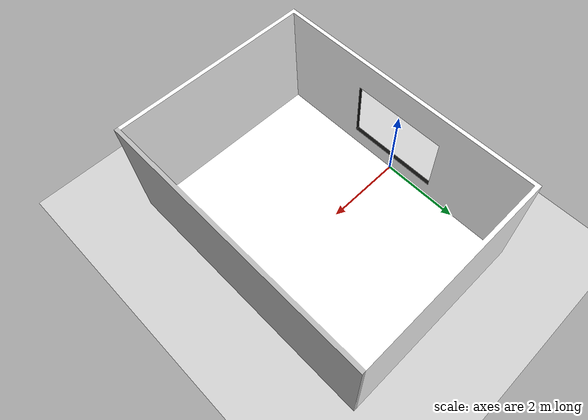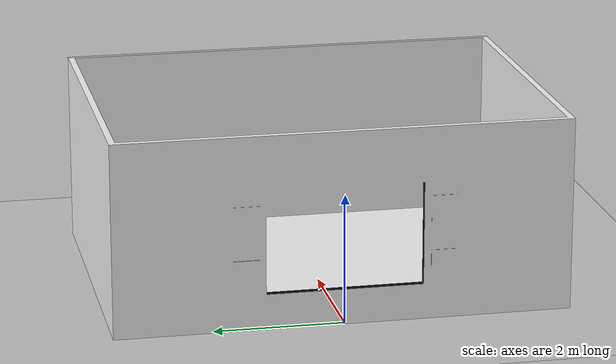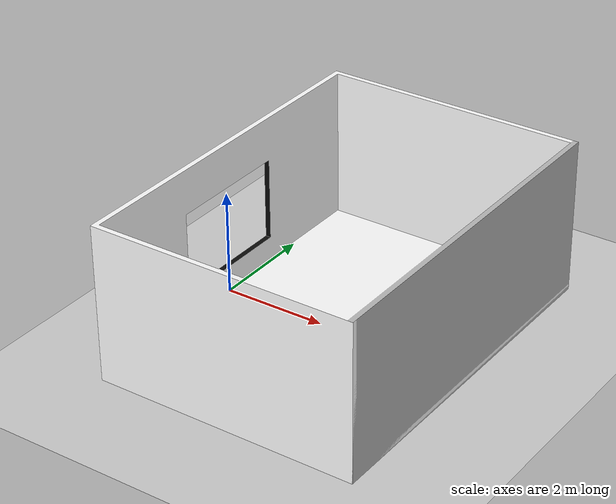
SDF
<?xml version="1.0" ?>
<sdf version="1.4">
  <world name="default">
    <gui>
      <camera name="user_camera">
        <pose>-12 .05 4 0 .35 -.05</pose>
      </camera>
    </gui>

    <include>
      <uri>model://mygroundplane</uri>
    </include>
    <include>
      <uri>model://sun</uri>
      <pose>-10 10 10 0 -1.047 0 </pose>
    </include>
    <include>
      <uri>model://window_wall</uri>
      <pose>0 0 0 0 0 3.14159265</pose>
      <scale>.5 .5 .5</scale>
    </include>

    <!-- Only one ROS interface plugin is required per world, as any other plugin can connect a Gazebo
         topic to a ROS topic (or vise versa). -->
    <plugin name="ros_interface_plugin" filename="librotors_gazebo_ros_interface_plugin.so"/>

    <spherical_coordinates>
      <surface_model>EARTH_WGS84</surface_model>
      <latitude_deg>47.3667</latitude_deg>
      <longitude_deg>8.5500</longitude_deg>
      <elevation>500.0</elevation>
      <heading_deg>0</heading_deg>
    </spherical_coordinates>
    <physics type='ode'>
      <ode>
        <solver>
          <type>quick</type>
          <iters>1000</iters>
          <sor>1.3</sor>
        </solver>
        <constraints>
          <cfm>0</cfm>
          <erp>0.2</erp>
          <contact_max_correcting_vel>100</contact_max_correcting_vel>
          <contact_surface_layer>0.001</contact_surface_layer>
        </constraints>
      </ode>
      <max_step_size>0.01</max_step_size>
      <real_time_factor>1</real_time_factor>
      <real_time_update_rate>100</real_time_update_rate>
      <gravity>0 0 -9.8</gravity>
    </physics>

    <scene>
      <sky>
        <clouds>
          <speed>12</speed>
        </clouds>
      </sky>
    </scene>

  </world>
</sdf>

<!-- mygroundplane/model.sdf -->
<sdf version="1.4">
  <model name="my_ground_plane">
    <static>true</static>
    <link name="link">
      <collision name="collision">
        <geometry>
          <plane>
            <normal>0 0 1</normal>
            <size>50 50</size>
          </plane>
        </geometry>
        <surface>
          <friction>
            <ode>
              <mu>100</mu>
              <mu2>50</mu2>
            </ode>
          </friction>
        </surface>
      </collision>
      <visual name="visual">
        <cast_shadows>false</cast_shadows>
        <geometry>
          <plane>
            <normal>0 0 1</normal>
            <size>50 50</size>
          </plane>
        </geometry>
        <material>
          <script>
            <uri>model://mygroundplane/materials/scripts</uri>
            <uri>model://mygroundplane/materials/textures</uri>
            <name>MyGroundPlane/Image</name>
          </script>
        </material>
      </visual>
    </link>
  </model>
</sdf>

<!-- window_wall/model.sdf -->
<sdf version="1.5">

 <model name='window_wall'>
      <pose>0 0 1 0 3.14159265 0</pose>
      <link name='link'>
        <inertial>
          <mass>1</mass>
          <inertia>
            <ixx>0.166667</ixx>
            <ixy>0</ixy>
            <ixz>0</ixz>
            <iyy>0.166667</iyy>
            <iyz>0</iyz>
            <izz>0.166667</izz>
          </inertia>
          <pose>0 0 0 0 -0 0</pose>
        </inertial>
        <collision name='collision'>
          <geometry>
            <mesh>
              <uri>model://window_wall/model.dae</uri>
              <scale>0.5 0.5 0.5</scale>
            </mesh>
          </geometry>
          <surface>
            <contact>
              <ode/>
            </contact>
            <bounce/>
            <friction>
              <torsional>
                <ode/>
              </torsional>
              <ode/>
            </friction>
          </surface>
          <max_contacts>10</max_contacts>
        </collision>
        <visual name='window_wall_mesh'>
          <geometry>
            <mesh>
                <uri>model://window_wall/model.dae</uri>
                <scale>0.5 0.5 0.5</scale>
            </mesh>
          </geometry>
        </visual>
        <self_collide>0</self_collide>
        <enable_wind>0</enable_wind>
        <kinematic>0</kinematic>
        <static>1</static>
      </link>
      <static>1</static>
    </model>
</sdf>
